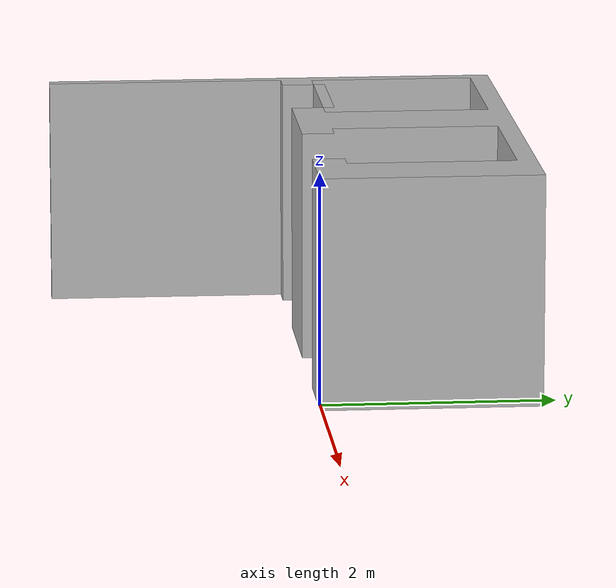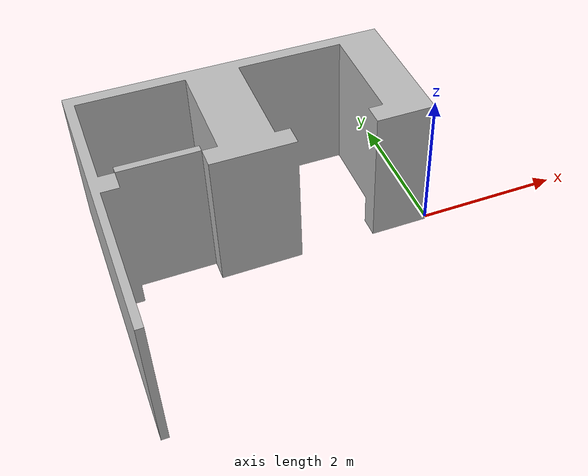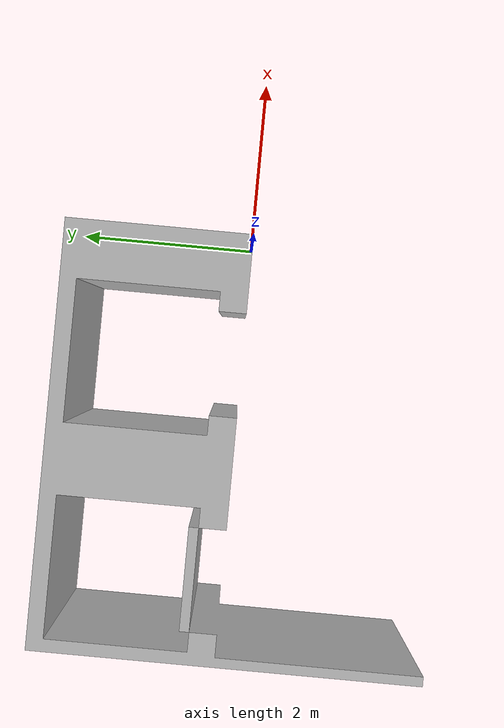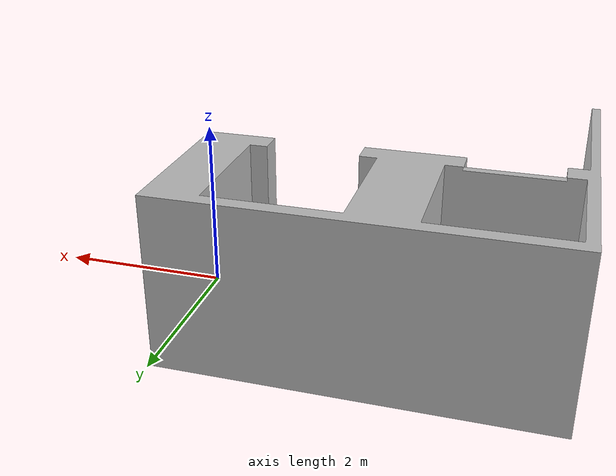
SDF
<?xml version='1.0'?>
<sdf version='1.5'>
  <model name="elevator_co">
    <static>1</static>

    <link name="link">
      <collision name="collision">
        <pose>0 0 -0.05 0 0 0</pose>
        <geometry>
          <mesh>
            <uri>model://elevator_co/meshes/right_open.stl</uri>
            <scale>0.001 0.001 0.001</scale>
          </mesh>
        </geometry>
        <surface>
            <friction>
                <ode>
                    <mu>10000</mu>
                    <mu2>10000</mu2>
                </ode>
            </friction>
        </surface>
      </collision>
      <visual name="visual">
        <pose>0 0 -0.05 0 0 0</pose>
        <geometry>
          <mesh>
            <uri>model://elevator_co/meshes/right_open.stl</uri>
            <scale>0.001 0.001 0.001</scale>
          </mesh>
        </geometry>
      </visual>
    </link>
  </model>
</sdf>
